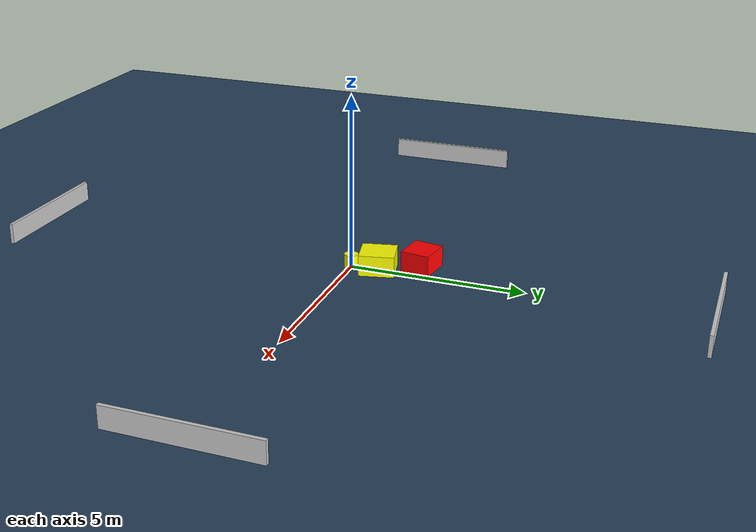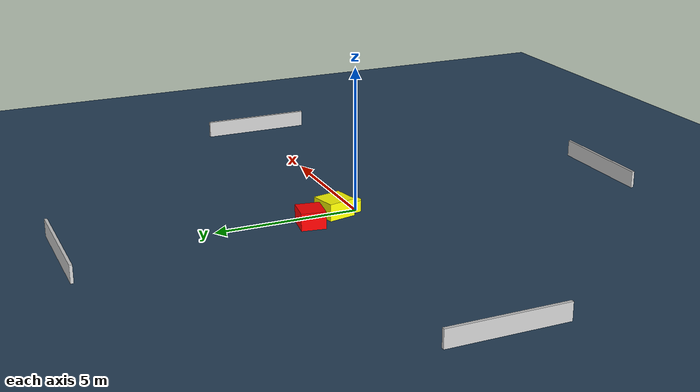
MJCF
<?xml version="1.0" ?>
<mujoco model="generated_environment">
  <option timestep="0.01" integrator="RK4" cone="elliptic"/>
  <default>
    <geom density="1"/>
  </default>
  <asset>
    <texture builtin="gradient" height="3072" name="skybox" rgb1="0.3 0.5 0.7" rgb2="0 0 0" type="skybox" width="512"/>
    <texture builtin="checker" height="300" name="groundplane" rgb1="0.2 0.3 0.4" rgb2="0.1 0.2 0.3" type="2d" width="300"/>
    <material name="groundplane" reflectance="0.2" texrepeat="5 5" texture="groundplane"/>
  </asset>
  <worldbody>
    <light dir="0 0 -1" directional="true" pos="0 0 1.5"/>
    <geom condim="3" friction="0.5 0.005 0.001" material="groundplane" name="floor" pos="0 0 0" size="0 0 0.05" type="plane"/>
    <body name="walls">
      <geom name="wall_1" condim="4" pos="-10.0 0.0 0.3" rgba="0.800000011920929 0.800000011920929 0.800000011920929 1.0" size="0.05 2.0 0.3" type="box"/>
      <geom name="wall_2" condim="4" pos="10.0 0.0 0.3" rgba="0.800000011920929 0.800000011920929 0.800000011920929 1.0" size="0.05 2.0 0.3" type="box"/>
      <geom name="wall_3" condim="4" pos="0.0 -10.0 0.3" rgba="0.800000011920929 0.800000011920929 0.800000011920929 1.0" size="2.0 0.05 0.3" type="box"/>
      <geom name="wall_4" condim="4" pos="0.0 10.0 0.3" rgba="0.800000011920929 0.800000011920929 0.800000011920929 1.0" size="2.0 0.05 0.3" type="box"/>
    </body>
    <body name="robot">
      <joint name="joint_x" type="slide" pos="0 0 0" axis="1 0 0"/>
      <joint name="joint_y" type="slide" pos="0 0 0" axis="0 1 0"/>
      <geom name="robot" type="cylinder" pos="0.0 0.0 0.2" size="0.2 0.2 0.0" mass="5.0" friction="1.0 0.005 0.0001" condim="4" rgba="1.0 1.0 0.0 1.0"/>
    </body>
    <body name="obstacle_1_movable">
      <geom name="obstacle_1_movable" condim="4" pos="-0.04147682315047036 0.787736920311855 0.3" euler="0 0 102.50546645491784" friction="0.0 0.005 0.001" rgba="1.0 1.0 0.0 1.0" size="0.5015812674435782 0.4698580356526861 0.3" type="box" mass="0.1"/>
      <joint type="free"/>
    </body>
    <body name="obstacle_2_static">
      <geom name="obstacle_2_static" condim="4" pos="-0.6060173763624092 1.892006317348621 0.3" euler="0 0 81.48675924119826" friction="0.0 0.005 0.001" rgba="1.0 0.0 0.0 1.0" size="0.42000607518299166 0.46812891349133234 0.3" type="box"/>
    </body>
  </worldbody>
  <actuator>
    <motor name="actuator_x" joint="joint_x" gear="1" ctrlrange="-1 1"/>
    <motor name="actuator_y" joint="joint_y" gear="1" ctrlrange="-1 1"/>
  </actuator>
</mujoco>
